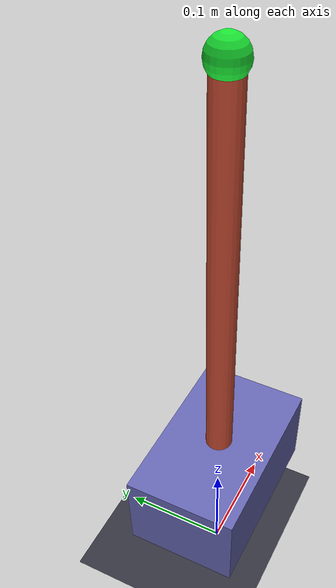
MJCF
<mujoco model="cartpole">
  <compiler angle="radian" autolimits="true"/>
  <option timestep="0.002" gravity="0 0 -9.81"/>
  <worldbody>
    <light pos="0 0 2" dir="0 0 -1"/>
    <geom name="floor" type="plane" size="3 1 0.05" rgba="0.2 0.2 0.25 1"/>
    <body name="cart" pos="0 0 0.12">
      <joint name="slider" type="slide" axis="1 0 0" range="-0.8 0.8" damping="0.8"/>
      <geom type="box" size="0.08 0.05 0.04" rgba="0.4 0.4 0.7 1" mass="0.8"/>
      <camera name="side_cam" pos="0 -0.6 0.3" xyaxes="1 0 0 0 0.4 1"/>
      <body name="pole" pos="0 0 0.04">
        <joint name="hinge" type="hinge" axis="0 1 0" range="-1.4 1.4" damping="0.05"/>
        <geom type="capsule" fromto="0 0 0 0 0 0.35" size="0.012" rgba="0.8 0.3 0.2 1" mass="0.15"/>
        <site name="tip" pos="0 0 0.35" size="0.015" rgba="0.1 0.9 0.2 1"/>
        <site name="ee" pos="0 0 0.35" size="0.01"/>
      </body>
    </body>
  </worldbody>
  <contact>
    <exclude body1="cart" body2="pole"/>
  </contact>
  <actuator>
    <motor name="cart_motor" joint="slider" ctrlrange="-8 8" forcerange="-8 8" gear="1"/>
  </actuator>
</mujoco>
